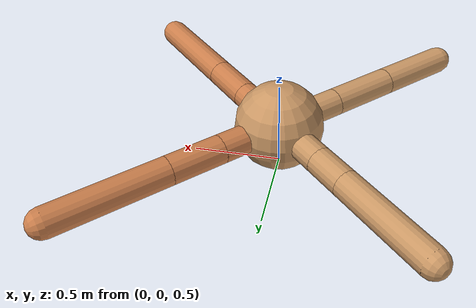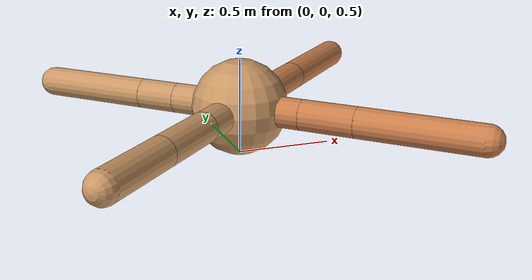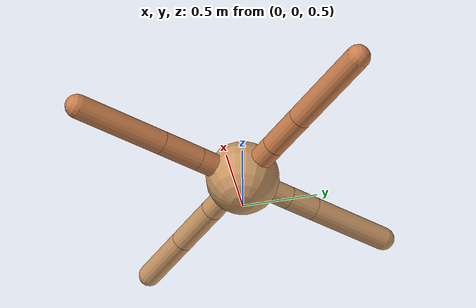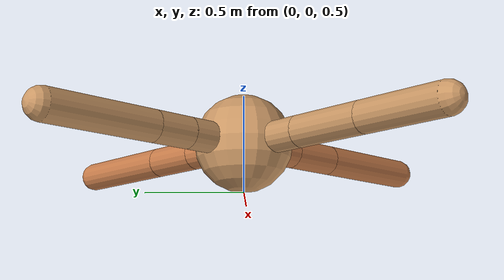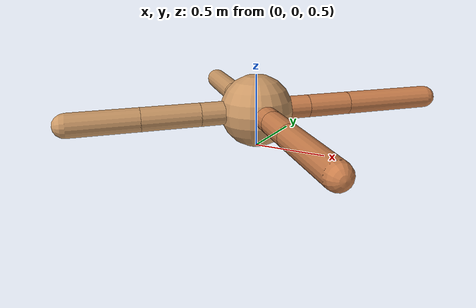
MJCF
<mujoco model="ant">
  <compiler angle="degree" coordinate="local" inertiafromgeom="true" />
  <option integrator="RK4" timestep="0.01" />
  <custom>
    <numeric data="0.0 0.0 0.55 1.0 0.0 0.0 0.0 0.0 1.0 0.0 -1.0 0.0 -1.0 0.0 1.0" name="init_qpos" />
  </custom>
  <default>
    <joint armature="1" damping="1" limited="true" />
    <geom conaffinity="0" condim="3" density="5.0" friction="1.5 0.1 0.1" margin="0.01" rgba="0.8 0.6 0.4 1" />
  </default>
  <worldbody>
    <body name="torso" pos="0 0 0.75">
      <geom name="torso_geom" pos="0 0 0" size="0.25" type="sphere" />

      <body name="front_left_leg" pos="0 0 0">
        <geom fromto="0.0 0.0 0.0 0.26601991792730006 0.26601991792730006 0.0" name="aux_1_geom" size="0.08" type="capsule" rgba=".8 .5 .3 1" />
        <body name="aux_1" pos="0.26601991792730006 0.26601991792730006 0.0">
          <joint axis="0 0 1" name="hip_1" pos="0.0 0.0 0.0" range="-40 40" type="hinge" />
          <geom fromto="0.0 0.0 0.0 0.2165702630033458 0.2165702630033458 0.0" name="left_leg_geom" size="0.08" type="capsule" rgba=".8 .5 .3 1" />
          <body pos="0.2165702630033458 0.2165702630033458 0.0" name="front_left_foot">
            <joint axis="-1 1 0" name="ankle_1" pos="0.0 0.0 0.0" range="30 100" type="hinge" />
            <geom fromto="0.0 0.0 0.0 0.4554156496419466 0.4554156496419466 0.0" name="left_ankle_geom" size="0.08" type="capsule" rgba=".8 .5 .3 1" />
          </body>
        </body>
      </body>
      <body name="front_right_leg" pos="0 0 0">
        <geom fromto="0.0 0.0 0.0 -0.2604556455913096 0.2604556455913096 0.0" name="aux_2_geom" size="0.08" type="capsule" />
        <body name="aux_2" pos="-0.2604556455913096 0.2604556455913096 0.0">
          <joint axis="0 0 1" name="hip_2" pos="0.0 0.0 0.0" range="-40 40" type="hinge" />
          <geom fromto="0.0 0.0 0.0 -0.14834878761718828 0.14834878761718828 0.0" name="right_leg_geom" size="0.08" type="capsule" />
          <body pos="-0.14834878761718828 0.14834878761718828 0.0" name="front_right_foot">
            <joint axis="1 1 0" name="ankle_2" pos="0.0 0.0 0.0" range="-100 -30" type="hinge" />
            <geom fromto="0.0 0.0 0.0 -0.4214308489657569 0.4214308489657569 0.0" name="right_ankle_geom" size="0.08" type="capsule" />
          </body>
        </body>
      </body>
      <body name="left_back_leg" pos="0 0 0">
        <geom fromto="0.0 0.0 0.0 -0.2768792530162911 -0.2768792530162911 0.0" name="aux_3_geom" size="0.08" type="capsule" />
        <body name="aux_3" pos="-0.2768792530162911 -0.2768792530162911 0.0">
          <joint axis="0 0 1" name="hip_3" pos="0.0 0.0 0.0" range="-40 40" type="hinge" />
          <geom fromto="0.0 0.0 0.0 -0.27576378141883684 -0.27576378141883684 0.0" name="back_leg_geom" size="0.08" type="capsule" />
          <body pos="-0.27576378141883684 -0.27576378141883684 0.0" name="left_back_foot">
            <joint axis="-1 1 0" name="ankle_3" pos="0.0 0.0 0.0" range="-100 -30" type="hinge" />
            <geom fromto="0.0 0.0 0.0 -0.32052857770961574 -0.32052857770961574 0.0" name="third_ankle_geom" size="0.08" type="capsule" />
          </body>
        </body>
      </body>
      <body name="right_back_leg" pos="0 0 0">
        <geom fromto="0.0 0.0 0.0 0.24607656814874668 -0.24607656814874668 0.0" name="aux_4_geom" size="0.08" type="capsule" rgba=".8 .5 .3 1" />
        <body name="aux_4" pos="0.24607656814874668 -0.24607656814874668 0.0">
          <joint axis="0 0 1" name="hip_4" pos="0.0 0.0 0.0" range="-40 40" type="hinge" />
          <geom fromto="0.0 0.0 0.0 0.2030047919575027 -0.2030047919575027 0.0" name="rightback_leg_geom" size="0.08" type="capsule" rgba=".8 .5 .3 1" />
          <body pos="0.2030047919575027 -0.2030047919575027 0.0" name="right_back_foot">
            <joint axis="1 1 0" name="ankle_4" pos="0.0 0.0 0.0" range="30 100" type="hinge" />
            <geom fromto="0.0 0.0 0.0 0.4457648020529414 -0.4457648020529414 0.0" name="fourth_ankle_geom" size="0.08" type="capsule" rgba=".8 .5 .3 1" />
          </body>
        </body>
      </body>
    </body>
  </worldbody>
  <actuator>
    <motor ctrllimited="true" ctrlrange="-1.0 1.0" joint="hip_4" gear="150" />
    <motor ctrllimited="true" ctrlrange="-1.0 1.0" joint="ankle_4" gear="150" />
    <motor ctrllimited="true" ctrlrange="-1.0 1.0" joint="hip_1" gear="150" />
    <motor ctrllimited="true" ctrlrange="-1.0 1.0" joint="ankle_1" gear="150" />
    <motor ctrllimited="true" ctrlrange="-1.0 1.0" joint="hip_2" gear="150" />
    <motor ctrllimited="true" ctrlrange="-1.0 1.0" joint="ankle_2" gear="150" />
    <motor ctrllimited="true" ctrlrange="-1.0 1.0" joint="hip_3" gear="150" />
    <motor ctrllimited="true" ctrlrange="-1.0 1.0" joint="ankle_3" gear="150" />
  </actuator>
</mujoco>
